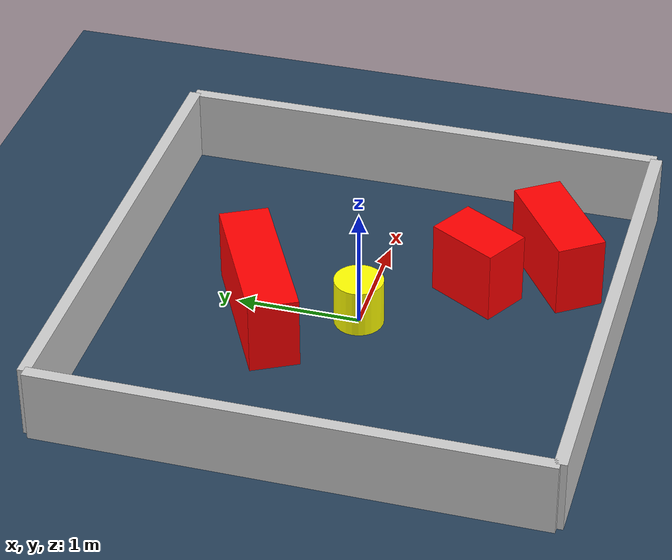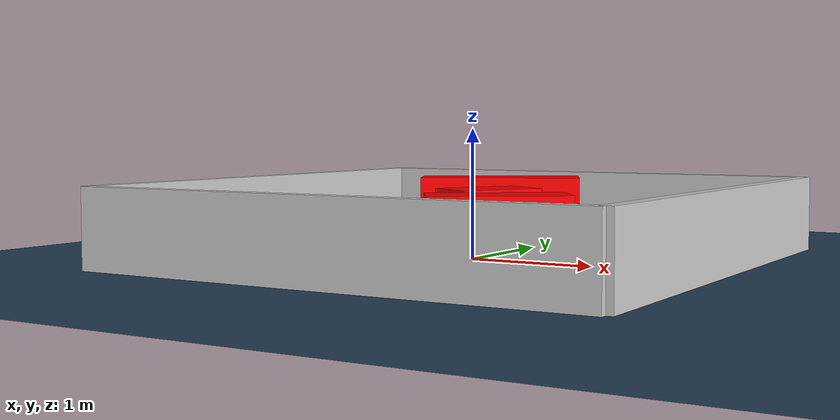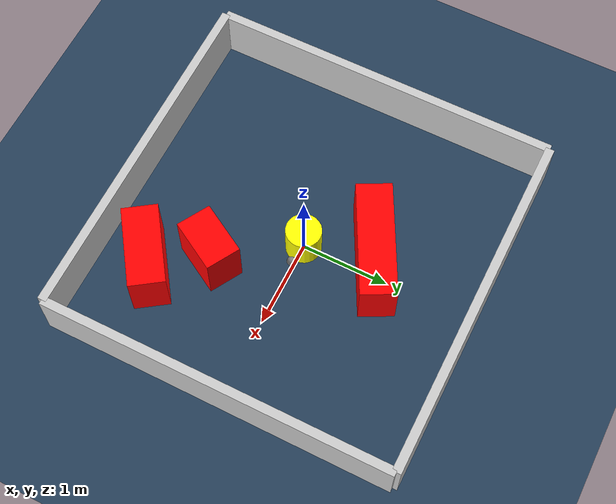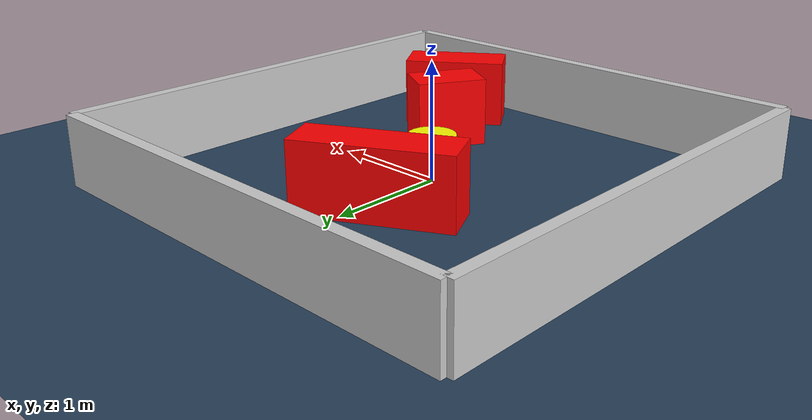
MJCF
<?xml version="1.0" ?>
<mujoco model="generated_environment">
  <option timestep="0.01" integrator="RK4" cone="elliptic"/>
  <default>
    <geom density="1"/>
  </default>
  <asset>
    <texture builtin="gradient" height="3072" rgb1="0.3 0.5 0.7" rgb2="0 0 0" type="skybox" width="512"/>
    <texture builtin="checker" height="300" mark="edge" markrgb="0.8 0.8 0.8" name="groundplane" rgb1="0.2 0.3 0.4" rgb2="0.1 0.2 0.3" type="2d" width="300"/>
    <material name="groundplane" reflectance="0.2" texrepeat="5 5" texture="groundplane" texuniform="true"/>
    <material name="robot" rgba="0.0 1.0 0.0 1"/>
  </asset>
  <worldbody>
    <light dir="0 0 -1" directional="true" pos="0 0 1.5"/>
    <geom condim="4" friction="1.0 0.005 0.001" material="groundplane" name="floor" size="0 0 0.05" type="plane"/>
    <body name="walls">
      <geom name="wall_1" condim="4" pos="-2.0 0.0 0.3" rgba="0.800000011920929 0.800000011920929 0.800000011920929 1.0" size="0.05 2.0 0.3" type="box"/>
      <geom name="wall_2" condim="4" pos="2.0 0.0 0.3" rgba="0.800000011920929 0.800000011920929 0.800000011920929 1.0" size="0.05 2.0 0.3" type="box"/>
      <geom name="wall_3" condim="4" pos="0.0 -2.0 0.3" rgba="0.800000011920929 0.800000011920929 0.800000011920929 1.0" size="2.0 0.05 0.3" type="box"/>
      <geom name="wall_4" condim="4" pos="0.0 2.0 0.3" rgba="0.800000011920929 0.800000011920929 0.800000011920929 1.0" size="2.0 0.05 0.3" type="box"/>
    </body>
    <body name="robot">
      <joint name="joint_x" type="slide" pos="0 0 0" axis="1 0 0"/>
      <joint name="joint_y" type="slide" pos="0 0 0" axis="0 1 0"/>
      <geom name="robot" type="sphere" pos="0.3 0.0 0.2" size="0.05" mass="5." friction="1.0 0.005 0.0001" condim="4" rgba="0.5 0.5 0.5 1.0"/>
      <site name="sensor_ball"/>
    </body>
    <body name="obstacle_movable_1">
      <geom name="obstacle_movable_1" condim="4" pos="0.0 0.0 0.2" euler="0 0 0.0" friction="1.0 0.005 0.001" rgba="1.0 1.0 0.0 1.0" size="0.2 0.2 0.0" type="cylinder" mass="0.1"/>
      <joint type="free"/>
    </body>
    <body name="obstacle_2_static">
      <geom name="obstacle_2_static" condim="4" pos="0.6024334108261207 -0.8197229894411522 0.3" euler="0 0 60.04767754041139" friction="1.0 0.005 0.001" rgba="1 0 0 1" size="0.30584028775028305 0.2 0.3" type="box"/>
    </body>
    <body name="obstacle_3_static">
      <geom name="obstacle_3_static" condim="4" pos="-0.1795124804447168 0.7655108795131833 0.3" euler="0 0 207.45596920330502" friction="1.0 0.005 0.001" rgba="1 0 0 1" size="0.6466051341727496 0.2 0.3" type="box"/>
    </body>
    <body name="obstacle_4_static">
      <geom name="obstacle_4_static" condim="4" pos="0.9890338035296691 -1.388014329848288 0.3" euler="0 0 214.66877061926994" friction="1.0 0.005 0.001" rgba="1 0 0 1" size="0.4556756664233065 0.2 0.3" type="box"/>
    </body>
  </worldbody>
  <actuator>
    <motor name="actuator_x" joint="joint_x" gear="1" ctrlrange="-1 1"/>
    <motor name="actuator_y" joint="joint_y" gear="1" ctrlrange="-1 1"/>
  </actuator>
</mujoco>
